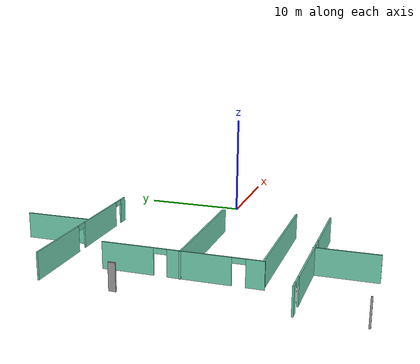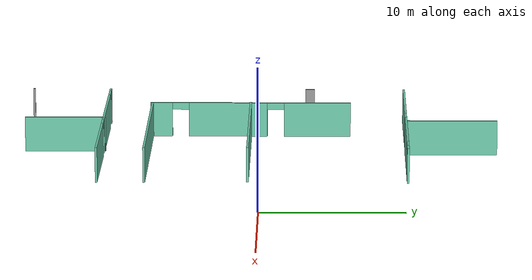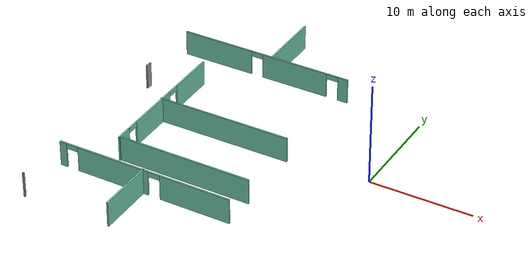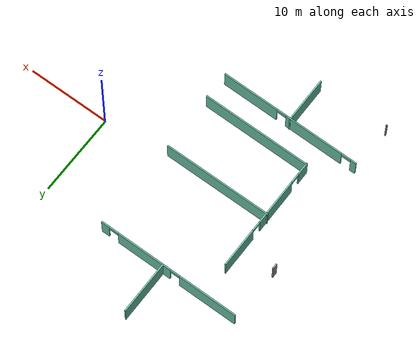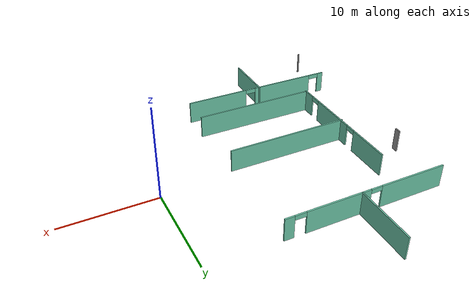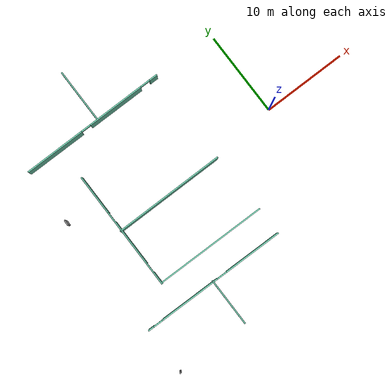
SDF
<sdf version="1.6">
 <model name="myWarehouse">
  <link name="Wall_12">
   <pose>-16.3895 10.2886 0 0 -0 0</pose>
   <visual name="Wall_12_Visual_0">
    <pose>-5.13222 0 1.25 0 -0 0</pose>
    <geometry><box><size>7.23555 0.15 2.5</size></box></geometry>
    <material>
     <script><uri>file://media/materials/scripts/gazebo.material</uri><name>Gazebo/Grey</name></script>
     <ambient>0.435294 0.796078 0.67451 1</ambient>
     <shader type="pixel"/>
     <diffuse>0.7 0.7 0.7 1</diffuse>
     <specular>0.01 0.01 0.01 1</specular>
     <emissive>0 0 0 1</emissive>
    </material>
    <meta><layer>0</layer></meta>
   </visual>
   <visual name="Wall_12_Visual_1">
    <pose>3.10908 0 1.25 0 -0 0</pose>
    <geometry><box><size>6.84705 0.15 2.5</size></box></geometry>
    <material>
     <script><uri>file://media/materials/scripts/gazebo.material</uri><name>Gazebo/Grey</name></script>
     <ambient>0.435294 0.796078 0.67451 1</ambient>
     <shader type="pixel"/>
     <diffuse>0.7 0.7 0.7 1</diffuse>
     <specular>0.01 0.01 0.01 1</specular>
     <emissive>0 0 0 1</emissive>
    </material>
    <meta><layer>0</layer></meta>
   </visual>
   <visual name="Wall_12_Visual_2">
    <pose>8.2413 0 1.25 0 -0 0</pose>
    <geometry><box><size>1.01739 0.15 2.5</size></box></geometry>
    <material>
     <script><uri>file://media/materials/scripts/gazebo.material</uri><name>Gazebo/Grey</name></script>
     <ambient>0.435294 0.796078 0.67451 1</ambient>
     <shader type="pixel"/>
     <diffuse>0.7 0.7 0.7 1</diffuse>
     <specular>0.01 0.01 0.01 1</specular>
     <emissive>0 0 0 1</emissive>
    </material>
    <meta><layer>0</layer></meta>
   </visual>
   <visual name="Wall_12_Visual_3">
    <pose>-0.914447 0 2.25 0 -0 0</pose>
    <geometry><box><size>1.2 0.15 0.5</size></box></geometry>
    <material>
     <script><uri>file://media/materials/scripts/gazebo.material</uri><name>Gazebo/Grey</name></script>
     <ambient>0.435294 0.796078 0.67451 1</ambient>
     <shader type="pixel"/>
     <diffuse>0.7 0.7 0.7 1</diffuse>
     <specular>0.01 0.01 0.01 1</specular>
     <emissive>0 0 0 1</emissive>
    </material>
    <meta><layer>0</layer></meta>
   </visual>
   <visual name="Wall_12_Visual_4">
    <pose>7.13261 0 2.25 0 -0 0</pose>
    <geometry><box><size>1.2 0.15 0.5</size></box></geometry>
    <material>
     <script><uri>file://media/materials/scripts/gazebo.material</uri><name>Gazebo/Grey</name></script>
     <ambient>0.435294 0.796078 0.67451 1</ambient>
     <shader type="pixel"/>
     <diffuse>0.7 0.7 0.7 1</diffuse>
     <specular>0.01 0.01 0.01 1</specular>
     <emissive>0 0 0 1</emissive>
    </material>
    <meta><layer>0</layer></meta>
   </visual>
   <collision name="Wall_12_Collision_0">
    <pose>-5.13222 0 1.25 0 -0 0</pose>
    <geometry><box><size>7.23555 0.15 2.5</size></box></geometry>
    <surface>
     <friction>
      <ode><mu>1</mu><mu2>1</mu2><fdir1>0 0 0</fdir1><slip1>0</slip1><slip2>0</slip2></ode>
      <torsional>
       <coefficient>1</coefficient>
       <patch_radius>0</patch_radius>
       <surface_radius>0</surface_radius>
       <use_patch_radius>1</use_patch_radius>
       <ode><slip>0</slip></ode>
      </torsional>
     </friction>
     <bounce><restitution_coefficient>0</restitution_coefficient><threshold>1e+06</threshold></bounce>
     <contact>
      <collide_without_contact>0</collide_without_contact>
      <collide_without_contact_bitmask>1</collide_without_contact_bitmask>
      <collide_bitmask>1</collide_bitmask>
      <ode>
       <soft_cfm>0</soft_cfm>
       <soft_erp>0.2</soft_erp>
       <kp>1e+13</kp>
       <kd>1</kd>
       <max_vel>0.01</max_vel>
       <min_depth>0</min_depth>
      </ode>
      <bullet>
       <split_impulse>1</split_impulse>
       <split_impulse_penetration_threshold>-0.01</split_impulse_penetration_threshold>
       <soft_cfm>0</soft_cfm>
       <soft_erp>0.2</soft_erp>
       <kp>1e+13</kp>
       <kd>1</kd>
      </bullet>
     </contact>
    </surface>
   </collision>
   <collision name="Wall_12_Collision_3">
    <pose>-0.914447 0 2.25 0 -0 0</pose>
    <geometry><box><size>1.2 0.15 0.5</size></box></geometry>
    <surface>
     <friction>
      <ode><mu>1</mu><mu2>1</mu2><fdir1>0 0 0</fdir1><slip1>0</slip1><slip2>0</slip2></ode>
      <torsional>
       <coefficient>1</coefficient>
       <patch_radius>0</patch_radius>
       <surface_radius>0</surface_radius>
       <use_patch_radius>1</use_patch_radius>
       <ode><slip>0</slip></ode>
      </torsional>
     </friction>
     <bounce><restitution_coefficient>0</restitution_coefficient><threshold>1e+06</threshold></bounce>
     <contact>
      <collide_without_contact>0</collide_without_contact>
      <collide_without_contact_bitmask>1</collide_without_contact_bitmask>
      <collide_bitmask>1</collide_bitmask>
      <ode>
       <soft_cfm>0</soft_cfm>
       <soft_erp>0.2</soft_erp>
       <kp>1e+13</kp>
       <kd>1</kd>
       <max_vel>0.01</max_vel>
       <min_depth>0</min_depth>
      </ode>
      <bullet>
       <split_impulse>1</split_impulse>
       <split_impulse_penetration_threshold>-0.01</split_impulse_penetration_threshold>
       <soft_cfm>0</soft_cfm>
       <soft_erp>0.2</soft_erp>
       <kp>1e+13</kp>
       <kd>1</kd>
      </bullet>
     </contact>
    </surface>
   </collision>
   <collision name="Wall_12_Collision_1">
    <pose>3.10908 0 1.25 0 -0 0</pose>
    <geometry><box><size>6.84705 0.15 2.5</size></box></geometry>
    <surface>
     <friction>
      <ode><mu>1</mu><mu2>1</mu2><fdir1>0 0 0</fdir1><slip1>0</slip1><slip2>0</slip2></ode>
      <torsional>
       <coefficient>1</coefficient>
       <patch_radius>0</patch_radius>
       <surface_radius>0</surface_radius>
       <use_patch_radius>1</use_patch_radius>
       <ode><slip>0</slip></ode>
      </torsional>
     </friction>
     <bounce><restitution_coefficient>0</restitution_coefficient><threshold>1e+06</threshold></bounce>
     <contact>
      <collide_without_contact>0</collide_without_contact>
      <collide_without_contact_bitmask>1</collide_without_contact_bitmask>
      <collide_bitmask>1</collide_bitmask>
      <ode>
       <soft_cfm>0</soft_cfm>
       <soft_erp>0.2</soft_erp>
       <kp>1e+13</kp>
       <kd>1</kd>
       <max_vel>0.01</max_vel>
       <min_depth>0</min_depth>
      </ode>
      <bullet>
       <split_impulse>1</split_impulse>
       <split_impulse_penetration_threshold>-0.01</split_impulse_penetration_threshold>
       <soft_cfm>0</soft_cfm>
       <soft_erp>0.2</soft_erp>
       <kp>1e+13</kp>
       <kd>1</kd>
      </bullet>
     </contact>
    </surface>
   </collision>
   <collision name="Wall_12_Collision_2">
    <pose>8.2413 0 1.25 0 -0 0</pose>
    <geometry><box><size>1.01739 0.15 2.5</size></box></geometry>
    <surface>
     <friction>
      <ode><mu>1</mu><mu2>1</mu2><fdir1>0 0 0</fdir1><slip1>0</slip1><slip2>0</slip2></ode>
      <torsional>
       <coefficient>1</coefficient>
       <patch_radius>0</patch_radius>
       <surface_radius>0</surface_radius>
       <use_patch_radius>1</use_patch_radius>
       <ode><slip>0</slip></ode>
      </torsional>
     </friction>
     <bounce><restitution_coefficient>0</restitution_coefficient><threshold>1e+06</threshold></bounce>
     <contact>
      <collide_without_contact>0</collide_without_contact>
      <collide_without_contact_bitmask>1</collide_without_contact_bitmask>
      <collide_bitmask>1</collide_bitmask>
      <ode>
       <soft_cfm>0</soft_cfm>
       <soft_erp>0.2</soft_erp>
       <kp>1e+13</kp>
       <kd>1</kd>
       <max_vel>0.01</max_vel>
       <min_depth>0</min_depth>
      </ode>
      <bullet>
       <split_impulse>1</split_impulse>
       <split_impulse_penetration_threshold>-0.01</split_impulse_penetration_threshold>
       <soft_cfm>0</soft_cfm>
       <soft_erp>0.2</soft_erp>
       <kp>1e+13</kp>
       <kd>1</kd>
      </bullet>
     </contact>
    </surface>
   </collision>
   <collision name="Wall_12_Collision_4">
    <pose>7.13261 0 2.25 0 -0 0</pose>
    <geometry><box><size>1.2 0.15 0.5</size></box></geometry>
    <surface>
     <friction>
      <ode><mu>1</mu><mu2>1</mu2><fdir1>0 0 0</fdir1><slip1>0</slip1><slip2>0</slip2></ode>
      <torsional>
       <coefficient>1</coefficient>
       <patch_radius>0</patch_radius>
       <surface_radius>0</surface_radius>
       <use_patch_radius>1</use_patch_radius>
       <ode><slip>0</slip></ode>
      </torsional>
     </friction>
     <bounce><restitution_coefficient>0</restitution_coefficient><threshold>1e+06</threshold></bounce>
     <contact>
      <collide_without_contact>0</collide_without_contact>
      <collide_without_contact_bitmask>1</collide_without_contact_bitmask>
      <collide_bitmask>1</collide_bitmask>
      <ode>
       <soft_cfm>0</soft_cfm>
       <soft_erp>0.2</soft_erp>
       <kp>1e+13</kp>
       <kd>1</kd>
       <max_vel>0.01</max_vel>
       <min_depth>0</min_depth>
      </ode>
      <bullet>
       <split_impulse>1</split_impulse>
       <split_impulse_penetration_threshold>-0.01</split_impulse_penetration_threshold>
       <soft_cfm>0</soft_cfm>
       <soft_erp>0.2</soft_erp>
       <kp>1e+13</kp>
       <kd>1</kd>
      </bullet>
     </contact>
    </surface>
   </collision>
  </link>
  <link name="Wall_22">
   <pose>-15.7265 13.516 0 0 -0 1.5708</pose>
   <visual name="Wall_22_Visual">
    <pose>0 0 1.25 0 -0 0</pose>
    <geometry><box><size>6.5 0.15 2.5</size></box></geometry>
    <material>
     <script><uri>file://media/materials/scripts/gazebo.material</uri><name>Gazebo/Grey</name></script>
     <ambient>0.435294 0.796078 0.67451 1</ambient>
     <shader type="pixel"/>
     <diffuse>0.7 0.7 0.7 1</diffuse>
     <specular>0.01 0.01 0.01 1</specular>
     <emissive>0 0 0 1</emissive>
    </material>
    <meta><layer>0</layer></meta>
   </visual>
   <collision name="Wall_22_Collision">
    <pose>0 0 1.25 0 -0 0</pose>
    <geometry><box><size>6.5 0.15 2.5</size></box></geometry>
    <surface>
     <friction>
      <ode><mu>1</mu><mu2>1</mu2><fdir1>0 0 0</fdir1><slip1>0</slip1><slip2>0</slip2></ode>
      <torsional>
       <coefficient>1</coefficient>
       <patch_radius>0</patch_radius>
       <surface_radius>0</surface_radius>
       <use_patch_radius>1</use_patch_radius>
       <ode><slip>0</slip></ode>
      </torsional>
     </friction>
     <bounce><restitution_coefficient>0</restitution_coefficient><threshold>1e+06</threshold></bounce>
     <contact>
      <collide_without_contact>0</collide_without_contact>
      <collide_without_contact_bitmask>1</collide_without_contact_bitmask>
      <collide_bitmask>1</collide_bitmask>
      <ode>
       <soft_cfm>0</soft_cfm>
       <soft_erp>0.2</soft_erp>
       <kp>1e+13</kp>
       <kd>1</kd>
       <max_vel>0.01</max_vel>
       <min_depth>0</min_depth>
      </ode>
      <bullet>
       <split_impulse>1</split_impulse>
       <split_impulse_penetration_threshold>-0.01</split_impulse_penetration_threshold>
       <soft_cfm>0</soft_cfm>
       <soft_erp>0.2</soft_erp>
       <kp>1e+13</kp>
       <kd>1</kd>
      </bullet>
     </contact>
    </surface>
   </collision>
  </link>
  <link name="Wall_40">
   <pose>-25.129 -16.858 0 0 -0 0</pose>
   <visual name="Wall_40_Visual">
    <pose>0 0 1.25 0 -0 0</pose>
    <geometry><box><size>0.15 0.15 2.5</size></box></geometry>
    <material>
     <script><uri>file://media/materials/scripts/gazebo.material</uri><name>Gazebo/Grey</name></script>
     <ambient>1 1 1 1</ambient>
     <shader type="pixel"/>
     <diffuse>0.7 0.7 0.7 1</diffuse>
     <specular>0.01 0.01 0.01 1</specular>
     <emissive>0 0 0 1</emissive>
    </material>
    <meta><layer>0</layer></meta>
   </visual>
   <collision name="Wall_40_Collision">
    <pose>0 0 1.25 0 -0 0</pose>
    <geometry><box><size>0.15 0.15 2.5</size></box></geometry>
    <surface>
     <friction>
      <ode><mu>1</mu><mu2>1</mu2><fdir1>0 0 0</fdir1><slip1>0</slip1><slip2>0</slip2></ode>
      <torsional>
       <coefficient>1</coefficient>
       <patch_radius>0</patch_radius>
       <surface_radius>0</surface_radius>
       <use_patch_radius>1</use_patch_radius>
       <ode><slip>0</slip></ode>
      </torsional>
     </friction>
     <bounce><restitution_coefficient>0</restitution_coefficient><threshold>1e+06</threshold></bounce>
     <contact>
      <collide_without_contact>0</collide_without_contact>
      <collide_without_contact_bitmask>1</collide_without_contact_bitmask>
      <collide_bitmask>1</collide_bitmask>
      <ode>
       <soft_cfm>0</soft_cfm>
       <soft_erp>0.2</soft_erp>
       <kp>1e+13</kp>
       <kd>1</kd>
       <max_vel>0.01</max_vel>
       <min_depth>0</min_depth>
      </ode>
      <bullet>
       <split_impulse>1</split_impulse>
       <split_impulse_penetration_threshold>-0.01</split_impulse_penetration_threshold>
       <soft_cfm>0</soft_cfm>
       <soft_erp>0.2</soft_erp>
       <kp>1e+13</kp>
       <kd>1</kd>
      </bullet>
     </contact>
    </surface>
   </collision>
  </link>
  <link name="Wall_44">
   <pose>-14.2771 -8.02414 0 0 -0 3.13564</pose>
   <visual name="Wall_44_Visual">
    <pose>0 0 1.25 0 -0 0</pose>
    <geometry><box><size>13.2908 0.15 2.5</size></box></geometry>
    <material>
     <script><uri>file://media/materials/scripts/gazebo.material</uri><name>Gazebo/Grey</name></script>
     <ambient>0.435294 0.796078 0.67451 1</ambient>
     <shader type="pixel"/>
     <diffuse>0.7 0.7 0.7 1</diffuse>
     <specular>0.01 0.01 0.01 1</specular>
     <emissive>0 0 0 1</emissive>
    </material>
    <meta><layer>0</layer></meta>
   </visual>
   <collision name="Wall_44_Collision">
    <pose>0 0 1.25 0 -0 0</pose>
    <geometry><box><size>13.2908 0.15 2.5</size></box></geometry>
    <surface>
     <friction>
      <ode><mu>1</mu><mu2>1</mu2><fdir1>0 0 0</fdir1><slip1>0</slip1><slip2>0</slip2></ode>
      <torsional>
       <coefficient>1</coefficient>
       <patch_radius>0</patch_radius>
       <surface_radius>0</surface_radius>
       <use_patch_radius>1</use_patch_radius>
       <ode><slip>0</slip></ode>
      </torsional>
     </friction>
     <bounce><restitution_coefficient>0</restitution_coefficient><threshold>1e+06</threshold></bounce>
     <contact>
      <collide_without_contact>0</collide_without_contact>
      <collide_without_contact_bitmask>1</collide_without_contact_bitmask>
      <collide_bitmask>1</collide_bitmask>
      <ode>
       <soft_cfm>0</soft_cfm>
       <soft_erp>0.2</soft_erp>
       <kp>1e+13</kp>
       <kd>1</kd>
       <max_vel>0.01</max_vel>
       <min_depth>0</min_depth>
      </ode>
      <bullet>
       <split_impulse>1</split_impulse>
       <split_impulse_penetration_threshold>-0.01</split_impulse_penetration_threshold>
       <soft_cfm>0</soft_cfm>
       <soft_erp>0.2</soft_erp>
       <kp>1e+13</kp>
       <kd>1</kd>
      </bullet>
     </contact>
    </surface>
   </collision>
  </link>
  <link name="Wall_45">
   <pose>-20.9297 -0.892357 0 0 -0 1.5708</pose>
   <visual name="Wall_45_Visual_0">
    <pose>-6.44534 0 1.25 0 -0 0</pose>
    <geometry><box><size>1.60932 0.15 2.5</size></box></geometry>
    <material>
     <script><uri>file://media/materials/scripts/gazebo.material</uri><name>Gazebo/Grey</name></script>
     <ambient>0.435294 0.796078 0.67451 1</ambient>
     <shader type="pixel"/>
     <diffuse>0.7 0.7 0.7 1</diffuse>
     <specular>0.01 0.01 0.01 1</specular>
     <emissive>0 0 0 1</emissive>
    </material>
    <meta><layer>0</layer></meta>
   </visual>
   <visual name="Wall_45_Visual_1">
    <pose>-1.60666 0 1.25 0 -0 0</pose>
    <geometry><box><size>5.66804 0.15 2.5</size></box></geometry>
    <material>
     <script><uri>file://media/materials/scripts/gazebo.material</uri><name>Gazebo/Grey</name></script>
     <ambient>0.435294 0.796078 0.67451 1</ambient>
     <shader type="pixel"/>
     <diffuse>0.7 0.7 0.7 1</diffuse>
     <specular>0.01 0.01 0.01 1</specular>
     <emissive>0 0 0 1</emissive>
    </material>
    <meta><layer>0</layer></meta>
   </visual>
   <visual name="Wall_45_Visual_2">
    <pose>4.83868 0 1.25 0 -0 0</pose>
    <geometry><box><size>4.82264 0.15 2.5</size></box></geometry>
    <material>
     <script><uri>file://media/materials/scripts/gazebo.material</uri><name>Gazebo/Grey</name></script>
     <ambient>0.435294 0.796078 0.67451 1</ambient>
     <shader type="pixel"/>
     <diffuse>0.7 0.7 0.7 1</diffuse>
     <specular>0.01 0.01 0.01 1</specular>
     <emissive>0 0 0 1</emissive>
    </material>
    <meta><layer>0</layer></meta>
   </visual>
   <visual name="Wall_45_Visual_3">
    <pose>-5.04068 0 2.25 0 -0 0</pose>
    <geometry><box><size>1.2 0.15 0.5</size></box></geometry>
    <material>
     <script><uri>file://media/materials/scripts/gazebo.material</uri><name>Gazebo/Grey</name></script>
     <ambient>0.435294 0.796078 0.67451 1</ambient>
     <shader type="pixel"/>
     <diffuse>0.7 0.7 0.7 1</diffuse>
     <specular>0.01 0.01 0.01 1</specular>
     <emissive>0 0 0 1</emissive>
    </material>
    <meta><layer>0</layer></meta>
   </visual>
   <visual name="Wall_45_Visual_4">
    <pose>1.82736 0 2.25 0 -0 0</pose>
    <geometry><box><size>1.2 0.15 0.5</size></box></geometry>
    <material>
     <script><uri>file://media/materials/scripts/gazebo.material</uri><name>Gazebo/Grey</name></script>
     <ambient>0.435294 0.796078 0.67451 1</ambient>
     <shader type="pixel"/>
     <diffuse>0.7 0.7 0.7 1</diffuse>
     <specular>0.01 0.01 0.01 1</specular>
     <emissive>0 0 0 1</emissive>
    </material>
    <meta><layer>0</layer></meta>
   </visual>
   <collision name="Wall_45_Collision_0">
    <pose>-6.44534 0 1.25 0 -0 0</pose>
    <geometry><box><size>1.60932 0.15 2.5</size></box></geometry>
    <surface>
     <friction>
      <ode><mu>1</mu><mu2>1</mu2><fdir1>0 0 0</fdir1><slip1>0</slip1><slip2>0</slip2></ode>
      <torsional>
       <coefficient>1</coefficient>
       <patch_radius>0</patch_radius>
       <surface_radius>0</surface_radius>
       <use_patch_radius>1</use_patch_radius>
       <ode><slip>0</slip></ode>
      </torsional>
     </friction>
     <bounce><restitution_coefficient>0</restitution_coefficient><threshold>1e+06</threshold></bounce>
     <contact>
      <collide_without_contact>0</collide_without_contact>
      <collide_without_contact_bitmask>1</collide_without_contact_bitmask>
      <collide_bitmask>1</collide_bitmask>
      <ode>
       <soft_cfm>0</soft_cfm>
       <soft_erp>0.2</soft_erp>
       <kp>1e+13</kp>
       <kd>1</kd>
       <max_vel>0.01</max_vel>
       <min_depth>0</min_depth>
      </ode>
      <bullet>
       <split_impulse>1</split_impulse>
       <split_impulse_penetration_threshold>-0.01</split_impulse_penetration_threshold>
       <soft_cfm>0</soft_cfm>
       <soft_erp>0.2</soft_erp>
       <kp>1e+13</kp>
       <kd>1</kd>
      </bullet>
     </contact>
    </surface>
   </collision>
   <collision name="Wall_45_Collision_1">
    <pose>-1.60666 0 1.25 0 -0 0</pose>
    <geometry><box><size>5.66804 0.15 2.5</size></box></geometry>
    <surface>
     <friction>
      <ode><mu>1</mu><mu2>1</mu2><fdir1>0 0 0</fdir1><slip1>0</slip1><slip2>0</slip2></ode>
      <torsional>
       <coefficient>1</coefficient>
       <patch_radius>0</patch_radius>
       <surface_radius>0</surface_radius>
       <use_patch_radius>1</use_patch_radius>
       <ode><slip>0</slip></ode>
      </torsional>
     </friction>
     <bounce><restitution_coefficient>0</restitution_coefficient><threshold>1e+06</threshold></bounce>
     <contact>
      <collide_without_contact>0</collide_without_contact>
      <collide_without_contact_bitmask>1</collide_without_contact_bitmask>
      <collide_bitmask>1</collide_bitmask>
      <ode>
       <soft_cfm>0</soft_cfm>
       <soft_erp>0.2</soft_erp>
       <kp>1e+13</kp>
       <kd>1</kd>
       <max_vel>0.01</max_vel>
       <min_depth>0</min_depth>
      </ode>
      <bullet>
       <split_impulse>1</split_impulse>
       <split_impulse_penetration_threshold>-0.01</split_impulse_penetration_threshold>
       <soft_cfm>0</soft_cfm>
       <soft_erp>0.2</soft_erp>
       <kp>1e+13</kp>
       <kd>1</kd>
      </bullet>
     </contact>
    </surface>
   </collision>
   <collision name="Wall_45_Collision_2">
    <pose>4.83868 0 1.25 0 -0 0</pose>
    <geometry><box><size>4.82264 0.15 2.5</size></box></geometry>
    <surface>
     <friction>
      <ode><mu>1</mu><mu2>1</mu2><fdir1>0 0 0</fdir1><slip1>0</slip1><slip2>0</slip2></ode>
      <torsional>
       <coefficient>1</coefficient>
       <patch_radius>0</patch_radius>
       <surface_radius>0</surface_radius>
       <use_patch_radius>1</use_patch_radius>
       <ode><slip>0</slip></ode>
      </torsional>
     </friction>
     <bounce><restitution_coefficient>0</restitution_coefficient><threshold>1e+06</threshold></bounce>
     <contact>
      <collide_without_contact>0</collide_without_contact>
      <collide_without_contact_bitmask>1</collide_without_contact_bitmask>
      <collide_bitmask>1</collide_bitmask>
      <ode>
       <soft_cfm>0</soft_cfm>
       <soft_erp>0.2</soft_erp>
       <kp>1e+13</kp>
       <kd>1</kd>
       <max_vel>0.01</max_vel>
       <min_depth>0</min_depth>
      </ode>
      <bullet>
       <split_impulse>1</split_impulse>
       <split_impulse_penetration_threshold>-0.01</split_impulse_penetration_threshold>
       <soft_cfm>0</soft_cfm>
       <soft_erp>0.2</soft_erp>
       <kp>1e+13</kp>
       <kd>1</kd>
      </bullet>
     </contact>
    </surface>
   </collision>
   <collision name="Wall_45_Collision_3">
    <pose>-5.04068 0 2.25 0 -0 0</pose>
    <geometry><box><size>1.2 0.15 0.5</size></box></geometry>
    <surface>
     <friction>
      <ode><mu>1</mu><mu2>1</mu2><fdir1>0 0 0</fdir1><slip1>0</slip1><slip2>0</slip2></ode>
      <torsional>
       <coefficient>1</coefficient>
       <patch_radius>0</patch_radius>
       <surface_radius>0</surface_radius>
       <use_patch_radius>1</use_patch_radius>
       <ode><slip>0</slip></ode>
      </torsional>
     </friction>
     <bounce><restitution_coefficient>0</restitution_coefficient><threshold>1e+06</threshold></bounce>
     <contact>
      <collide_without_contact>0</collide_without_contact>
      <collide_without_contact_bitmask>1</collide_without_contact_bitmask>
      <collide_bitmask>1</collide_bitmask>
      <ode>
       <soft_cfm>0</soft_cfm>
       <soft_erp>0.2</soft_erp>
       <kp>1e+13</kp>
       <kd>1</kd>
       <max_vel>0.01</max_vel>
       <min_depth>0</min_depth>
      </ode>
      <bullet>
       <split_impulse>1</split_impulse>
       <split_impulse_penetration_threshold>-0.01</split_impulse_penetration_threshold>
       <soft_cfm>0</soft_cfm>
       <soft_erp>0.2</soft_erp>
       <kp>1e+13</kp>
       <kd>1</kd>
      </bullet>
     </contact>
    </surface>
   </collision>
   <collision name="Wall_45_Collision_4">
    <pose>1.82736 0 2.25 0 -0 0</pose>
    <geometry><box><size>1.2 0.15 0.5</size></box></geometry>
    <surface>
     <friction>
      <ode><mu>1</mu><mu2>1</mu2><fdir1>0 0 0</fdir1><slip1>0</slip1><slip2>0</slip2></ode>
      <torsional>
       <coefficient>1</coefficient>
       <patch_radius>0</patch_radius>
       <surface_radius>0</surface_radius>
       <use_patch_radius>1</use_patch_radius>
       <ode><slip>0</slip></ode>
      </torsional>
     </friction>
     <bounce><restitution_coefficient>0</restitution_coefficient><threshold>1e+06</threshold></bounce>
     <contact>
      <collide_without_contact>0</collide_without_contact>
      <collide_without_contact_bitmask>1</collide_without_contact_bitmask>
      <collide_bitmask>1</collide_bitmask>
      <ode>
       <soft_cfm>0</soft_cfm>
       <soft_erp>0.2</soft_erp>
       <kp>1e+13</kp>
       <kd>1</kd>
       <max_vel>0.01</max_vel>
       <min_depth>0</min_depth>
      </ode>
      <bullet>
       <split_impulse>1</split_impulse>
       <split_impulse_penetration_threshold>-0.01</split_impulse_penetration_threshold>
       <soft_cfm>0</soft_cfm>
       <soft_erp>0.2</soft_erp>
       <kp>1e+13</kp>
       <kd>1</kd>
      </bullet>
     </contact>
    </surface>
   </collision>
  </link>
  <link name="Wall_49">
   <pose>-16.3823 -11.3001 0 0 0 -0.008343</pose>
   <visual name="Wall_49_Visual_0">
    <pose>-8.39588 0 1.25 0 -0 0</pose>
    <geometry><box><size>0.708839 0.15 2.5</size></box></geometry>
    <material>
     <script><uri>file://media/materials/scripts/gazebo.material</uri><name>Gazebo/Grey</name></script>
     <ambient>0.435294 0.796078 0.67451 1</ambient>
     <shader type="pixel"/>
     <diffuse>0.7 0.7 0.7 1</diffuse>
     <specular>0.01 0.01 0.01 1</specular>
     <emissive>0 0 0 1</emissive>
    </material>
    <meta><layer>0</layer></meta>
   </visual>
   <visual name="Wall_49_Visual_1">
    <pose>-3.16146 0 1.25 0 -0 0</pose>
    <geometry><box><size>7.36 0.15 2.5</size></box></geometry>
    <material>
     <script><uri>file://media/materials/scripts/gazebo.material</uri><name>Gazebo/Grey</name></script>
     <ambient>0.435294 0.796078 0.67451 1</ambient>
     <shader type="pixel"/>
     <diffuse>0.7 0.7 0.7 1</diffuse>
     <specular>0.01 0.01 0.01 1</specular>
     <emissive>0 0 0 1</emissive>
    </material>
    <meta><layer>0</layer></meta>
   </visual>
   <visual name="Wall_49_Visual_2">
    <pose>5.23442 0 1.25 0 -0 0</pose>
    <geometry><box><size>7.03176 0.15 2.5</size></box></geometry>
    <material>
     <script><uri>file://media/materials/scripts/gazebo.material</uri><name>Gazebo/Grey</name></script>
     <ambient>0.435294 0.796078 0.67451 1</ambient>
     <shader type="pixel"/>
     <diffuse>0.7 0.7 0.7 1</diffuse>
     <specular>0.01 0.01 0.01 1</specular>
     <emissive>0 0 0 1</emissive>
    </material>
    <meta><layer>0</layer></meta>
   </visual>
   <visual name="Wall_49_Visual_3">
    <pose>-7.44146 0 2.25 0 -0 0</pose>
    <geometry><box><size>1.2 0.15 0.5</size></box></geometry>
    <material>
     <script><uri>file://media/materials/scripts/gazebo.material</uri><name>Gazebo/Grey</name></script>
     <ambient>0.435294 0.796078 0.67451 1</ambient>
     <shader type="pixel"/>
     <diffuse>0.7 0.7 0.7 1</diffuse>
     <specular>0.01 0.01 0.01 1</specular>
     <emissive>0 0 0 1</emissive>
    </material>
    <meta><layer>0</layer></meta>
   </visual>
   <visual name="Wall_49_Visual_4">
    <pose>1.11854 0 2.25 0 -0 0</pose>
    <geometry><box><size>1.2 0.15 0.5</size></box></geometry>
    <material>
     <script><uri>file://media/materials/scripts/gazebo.material</uri><name>Gazebo/Grey</name></script>
     <ambient>0.435294 0.796078 0.67451 1</ambient>
     <shader type="pixel"/>
     <diffuse>0.7 0.7 0.7 1</diffuse>
     <specular>0.01 0.01 0.01 1</specular>
     <emissive>0 0 0 1</emissive>
    </material>
    <meta><layer>0</layer></meta>
   </visual>
   <collision name="Wall_49_Collision_0">
    <pose>-8.39588 0 1.25 0 -0 0</pose>
    <geometry><box><size>0.708839 0.15 2.5</size></box></geometry>
    <surface>
     <friction>
      <ode><mu>1</mu><mu2>1</mu2><fdir1>0 0 0</fdir1><slip1>0</slip1><slip2>0</slip2></ode>
      <torsional>
       <coefficient>1</coefficient>
       <patch_radius>0</patch_radius>
       <surface_radius>0</surface_radius>
       <use_patch_radius>1</use_patch_radius>
       <ode><slip>0</slip></ode>
      </torsional>
     </friction>
     <bounce><restitution_coefficient>0</restitution_coefficient><threshold>1e+06</threshold></bounce>
     <contact>
      <collide_without_contact>0</collide_without_contact>
      <collide_without_contact_bitmask>1</collide_without_contact_bitmask>
      <collide_bitmask>1</collide_bitmask>
      <ode>
       <soft_cfm>0</soft_cfm>
       <soft_erp>0.2</soft_erp>
       <kp>1e+13</kp>
       <kd>1</kd>
       <max_vel>0.01</max_vel>
       <min_depth>0</min_depth>
      </ode>
      <bullet>
       <split_impulse>1</split_impulse>
       <split_impulse_penetration_threshold>-0.01</split_impulse_penetration_threshold>
       <soft_cfm>0</soft_cfm>
       <soft_erp>0.2</soft_erp>
       <kp>1e+13</kp>
       <kd>1</kd>
      </bullet>
     </contact>
    </surface>
   </collision>
   <collision name="Wall_49_Collision_1">
    <pose>-3.16146 0 1.25 0 -0 0</pose>
    <geometry><box><size>7.36 0.15 2.5</size></box></geometry>
    <surface>
     <friction>
      <ode><mu>1</mu><mu2>1</mu2><fdir1>0 0 0</fdir1><slip1>0</slip1><slip2>0</slip2></ode>
      <torsional>
       <coefficient>1</coefficient>
       <patch_radius>0</patch_radius>
       <surface_radius>0</surface_radius>
       <use_patch_radius>1</use_patch_radius>
       <ode><slip>0</slip></ode>
      </torsional>
     </friction>
     <bounce><restitution_coefficient>0</restitution_coefficient><threshold>1e+06</threshold></bounce>
     <contact>
      <collide_without_contact>0</collide_without_contact>
      <collide_without_contact_bitmask>1</collide_without_contact_bitmask>
      <collide_bitmask>1</collide_bitmask>
      <ode>
       <soft_cfm>0</soft_cfm>
       <soft_erp>0.2</soft_erp>
       <kp>1e+13</kp>
       <kd>1</kd>
       <max_vel>0.01</max_vel>
       <min_depth>0</min_depth>
      </ode>
      <bullet>
       <split_impulse>1</split_impulse>
       <split_impulse_penetration_threshold>-0.01</split_impulse_penetration_threshold>
       <soft_cfm>0</soft_cfm>
       <soft_erp>0.2</soft_erp>
       <kp>1e+13</kp>
       <kd>1</kd>
      </bullet>
     </contact>
    </surface>
   </collision>
   <collision name="Wall_49_Collision_2">
    <pose>5.23442 0 1.25 0 -0 0</pose>
    <geometry><box><size>7.03176 0.15 2.5</size></box></geometry>
    <surface>
     <friction>
      <ode><mu>1</mu><mu2>1</mu2><fdir1>0 0 0</fdir1><slip1>0</slip1><slip2>0</slip2></ode>
      <torsional>
       <coefficient>1</coefficient>
       <patch_radius>0</patch_radius>
       <surface_radius>0</surface_radius>
       <use_patch_radius>1</use_patch_radius>
       <ode><slip>0</slip></ode>
      </torsional>
     </friction>
     <bounce><restitution_coefficient>0</restitution_coefficient><threshold>1e+06</threshold></bounce>
     <contact>
      <collide_without_contact>0</collide_without_contact>
      <collide_without_contact_bitmask>1</collide_without_contact_bitmask>
      <collide_bitmask>1</collide_bitmask>
      <ode>
       <soft_cfm>0</soft_cfm>
       <soft_erp>0.2</soft_erp>
       <kp>1e+13</kp>
       <kd>1</kd>
       <max_vel>0.01</max_vel>
       <min_depth>0</min_depth>
      </ode>
      <bullet>
       <split_impulse>1</split_impulse>
       <split_impulse_penetration_threshold>-0.01</split_impulse_penetration_threshold>
       <soft_cfm>0</soft_cfm>
       <soft_erp>0.2</soft_erp>
       <kp>1e+13</kp>
       <kd>1</kd>
      </bullet>
     </contact>
    </surface>
   </collision>
   <collision name="Wall_49_Collision_3">
    <pose>-7.44146 0 2.25 0 -0 0</pose>
    <geometry><box><size>1.2 0.15 0.5</size></box></geometry>
    <surface>
     <friction>
      <ode><mu>1</mu><mu2>1</mu2><fdir1>0 0 0</fdir1><slip1>0</slip1><slip2>0</slip2></ode>
      <torsional>
       <coefficient>1</coefficient>
       <patch_radius>0</patch_radius>
       <surface_radius>0</surface_radius>
       <use_patch_radius>1</use_patch_radius>
       <ode><slip>0</slip></ode>
      </torsional>
     </friction>
     <bounce><restitution_coefficient>0</restitution_coefficient><threshold>1e+06</threshold></bounce>
     <contact>
      <collide_without_contact>0</collide_without_contact>
      <collide_without_contact_bitmask>1</collide_without_contact_bitmask>
      <collide_bitmask>1</collide_bitmask>
      <ode>
       <soft_cfm>0</soft_cfm>
       <soft_erp>0.2</soft_erp>
       <kp>1e+13</kp>
       <kd>1</kd>
       <max_vel>0.01</max_vel>
       <min_depth>0</min_depth>
      </ode>
      <bullet>
       <split_impulse>1</split_impulse>
       <split_impulse_penetration_threshold>-0.01</split_impulse_penetration_threshold>
       <soft_cfm>0</soft_cfm>
       <soft_erp>0.2</soft_erp>
       <kp>1e+13</kp>
       <kd>1</kd>
      </bullet>
     </contact>
    </surface>
   </collision>
   <collision name="Wall_49_Collision_4">
    <pose>1.11854 0 2.25 0 -0 0</pose>
    <geometry><box><size>1.2 0.15 0.5</size></box></geometry>
    <surface>
     <friction>
      <ode><mu>1</mu><mu2>1</mu2><fdir1>0 0 0</fdir1><slip1>0</slip1><slip2>0</slip2></ode>
      <torsional>
       <coefficient>1</coefficient>
       <patch_radius>0</patch_radius>
       <surface_radius>0</surface_radius>
       <use_patch_radius>1</use_patch_radius>
       <ode><slip>0</slip></ode>
      </torsional>
     </friction>
     <bounce><restitution_coefficient>0</restitution_coefficient><threshold>1e+06</threshold></bounce>
     <contact>
      <collide_without_contact>0</collide_without_contact>
      <collide_without_contact_bitmask>1</collide_without_contact_bitmask>
      <collide_bitmask>1</collide_bitmask>
      <ode>
       <soft_cfm>0</soft_cfm>
       <soft_erp>0.2</soft_erp>
       <kp>1e+13</kp>
       <kd>1</kd>
       <max_vel>0.01</max_vel>
       <min_depth>0</min_depth>
      </ode>
      <bullet>
       <split_impulse>1</split_impulse>
       <split_impulse_penetration_threshold>-0.01</split_impulse_penetration_threshold>
       <soft_cfm>0</soft_cfm>
       <soft_erp>0.2</soft_erp>
       <kp>1e+13</kp>
       <kd>1</kd>
      </bullet>
     </contact>
    </surface>
   </collision>
  </link>
  <link name="Wall_52">
   <pose>-16.4167 -14.0373 0 0 0 -1.5708</pose>
   <visual name="Wall_52_Visual">
    <pose>0 0 1.25 0 -0 0</pose>
    <geometry><box><size>5.75 0.15 2.5</size></box></geometry>
    <material>
     <script><uri>file://media/materials/scripts/gazebo.material</uri><name>Gazebo/Grey</name></script>
     <ambient>0.435294 0.796078 0.67451 1</ambient>
     <shader type="pixel"/>
     <diffuse>0.7 0.7 0.7 1</diffuse>
     <specular>0.01 0.01 0.01 1</specular>
     <emissive>0 0 0 1</emissive>
    </material>
    <meta><layer>0</layer></meta>
   </visual>
   <collision name="Wall_52_Collision">
    <pose>0 0 1.25 0 -0 0</pose>
    <geometry><box><size>5.75 0.15 2.5</size></box></geometry>
    <surface>
     <friction>
      <ode><mu>1</mu><mu2>1</mu2><fdir1>0 0 0</fdir1><slip1>0</slip1><slip2>0</slip2></ode>
      <torsional>
       <coefficient>1</coefficient>
       <patch_radius>0</patch_radius>
       <surface_radius>0</surface_radius>
       <use_patch_radius>1</use_patch_radius>
       <ode><slip>0</slip></ode>
      </torsional>
     </friction>
     <bounce><restitution_coefficient>0</restitution_coefficient><threshold>1e+06</threshold></bounce>
     <contact>
      <collide_without_contact>0</collide_without_contact>
      <collide_without_contact_bitmask>1</collide_without_contact_bitmask>
      <collide_bitmask>1</collide_bitmask>
      <ode>
       <soft_cfm>0</soft_cfm>
       <soft_erp>0.2</soft_erp>
       <kp>1e+13</kp>
       <kd>1</kd>
       <max_vel>0.01</max_vel>
       <min_depth>0</min_depth>
      </ode>
      <bullet>
       <split_impulse>1</split_impulse>
       <split_impulse_penetration_threshold>-0.01</split_impulse_penetration_threshold>
       <soft_cfm>0</soft_cfm>
       <soft_erp>0.2</soft_erp>
       <kp>1e+13</kp>
       <kd>1</kd>
      </bullet>
     </contact>
    </surface>
   </collision>
  </link>
  <link name="Wall_56">
   <pose>-14.4754 -0.867786 0 0 -0 0</pose>
   <visual name="Wall_56_Visual">
    <pose>0 0 1.25 0 -0 0</pose>
    <geometry><box><size>13.25 0.15 2.5</size></box></geometry>
    <material>
     <script><uri>file://media/materials/scripts/gazebo.material</uri><name>Gazebo/Grey</name></script>
     <ambient>0.435294 0.796078 0.67451 1</ambient>
     <shader type="pixel"/>
     <diffuse>0.7 0.7 0.7 1</diffuse>
     <specular>0.01 0.01 0.01 1</specular>
     <emissive>0 0 0 1</emissive>
    </material>
    <meta><layer>0</layer></meta>
   </visual>
   <collision name="Wall_56_Collision">
    <pose>0 0 1.25 0 -0 0</pose>
    <geometry><box><size>13.25 0.15 2.5</size></box></geometry>
    <surface>
     <friction>
      <ode><mu>1</mu><mu2>1</mu2><fdir1>0 0 0</fdir1><slip1>0</slip1><slip2>0</slip2></ode>
      <torsional>
       <coefficient>1</coefficient>
       <patch_radius>0</patch_radius>
       <surface_radius>0</surface_radius>
       <use_patch_radius>1</use_patch_radius>
       <ode><slip>0</slip></ode>
      </torsional>
     </friction>
     <bounce><restitution_coefficient>0</restitution_coefficient><threshold>1e+06</threshold></bounce>
     <contact>
      <collide_without_contact>0</collide_without_contact>
      <collide_without_contact_bitmask>1</collide_without_contact_bitmask>
      <collide_bitmask>1</collide_bitmask>
      <ode>
       <soft_cfm>0</soft_cfm>
       <soft_erp>0.2</soft_erp>
       <kp>1e+13</kp>
       <kd>1</kd>
       <max_vel>0.01</max_vel>
       <min_depth>0</min_depth>
      </ode>
      <bullet>
       <split_impulse>1</split_impulse>
       <split_impulse_penetration_threshold>-0.01</split_impulse_penetration_threshold>
       <soft_cfm>0</soft_cfm>
       <soft_erp>0.2</soft_erp>
       <kp>1e+13</kp>
       <kd>1</kd>
      </bullet>
     </contact>
    </surface>
   </collision>
  </link>
  <link name="Wall_9">
   <pose>-25.1671 3.43012 0 0 -0 1.5508</pose>
   <visual name="Wall_9_Visual">
    <pose>0 0 1.25 0 -0 0</pose>
    <geometry><box><size>0.6501 0.15 2.5</size></box></geometry>
    <material>
     <script><uri>file://media/materials/scripts/gazebo.material</uri><name>Gazebo/Grey</name></script>
     <ambient>1 1 1 1</ambient>
     <shader type="pixel"/>
     <diffuse>0.7 0.7 0.7 1</diffuse>
     <specular>0.01 0.01 0.01 1</specular>
     <emissive>0 0 0 1</emissive>
    </material>
    <meta><layer>0</layer></meta>
   </visual>
   <collision name="Wall_9_Collision">
    <pose>0 0 1.25 0 -0 0</pose>
    <geometry><box><size>0.6501 0.15 2.5</size></box></geometry>
    <surface>
     <friction>
      <ode><mu>1</mu><mu2>1</mu2><fdir1>0 0 0</fdir1><slip1>0</slip1><slip2>0</slip2></ode>
      <torsional>
       <coefficient>1</coefficient>
       <patch_radius>0</patch_radius>
       <surface_radius>0</surface_radius>
       <use_patch_radius>1</use_patch_radius>
       <ode><slip>0</slip></ode>
      </torsional>
     </friction>
     <bounce><restitution_coefficient>0</restitution_coefficient><threshold>1e+06</threshold></bounce>
     <contact>
      <collide_without_contact>0</collide_without_contact>
      <collide_without_contact_bitmask>1</collide_without_contact_bitmask>
      <collide_bitmask>1</collide_bitmask>
      <ode>
       <soft_cfm>0</soft_cfm>
       <soft_erp>0.2</soft_erp>
       <kp>1e+13</kp>
       <kd>1</kd>
       <max_vel>0.01</max_vel>
       <min_depth>0</min_depth>
      </ode>
      <bullet>
       <split_impulse>1</split_impulse>
       <split_impulse_penetration_threshold>-0.01</split_impulse_penetration_threshold>
       <soft_cfm>0</soft_cfm>
       <soft_erp>0.2</soft_erp>
       <kp>1e+13</kp>
       <kd>1</kd>
      </bullet>
     </contact>
    </surface>
   </collision>
  </link>
  <static>1</static>
 </model>
</sdf>
